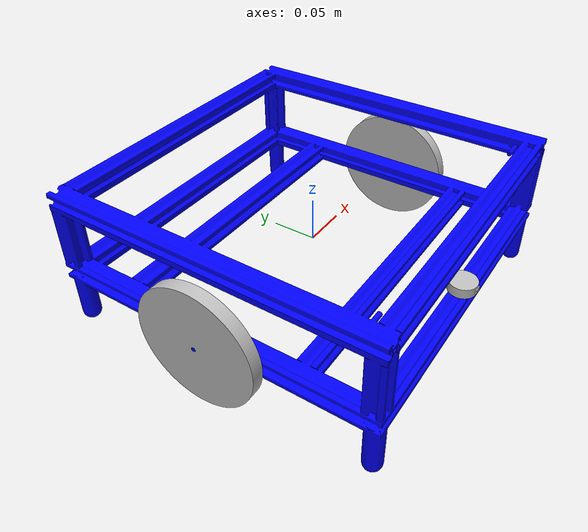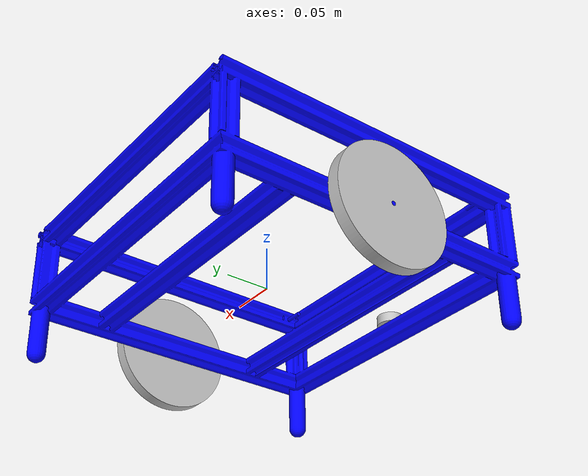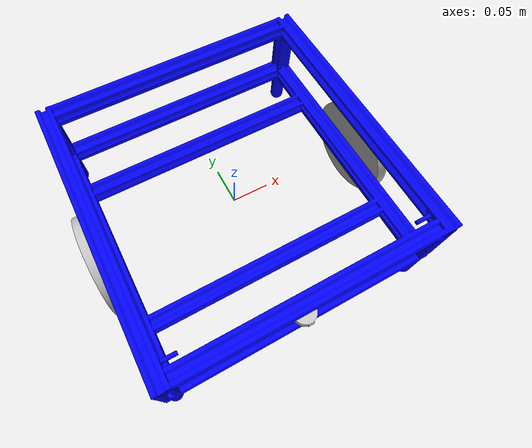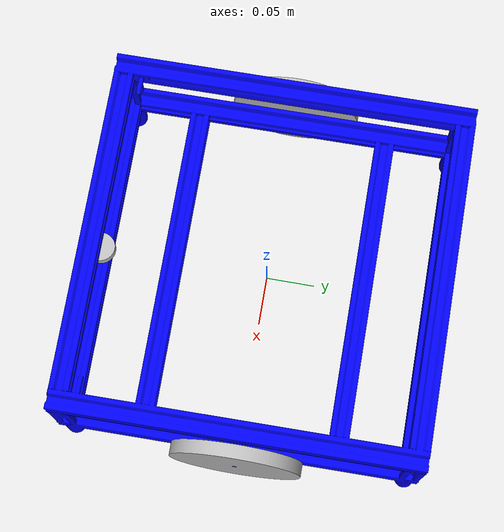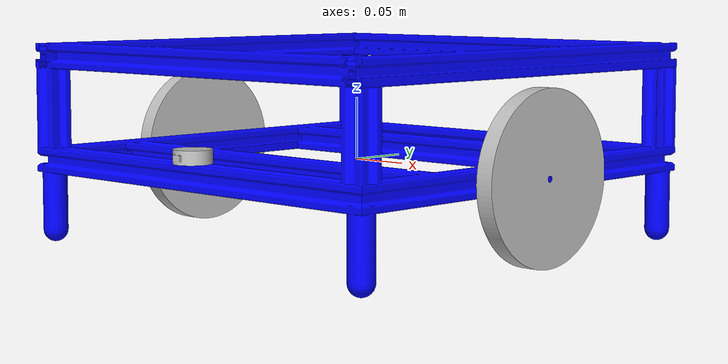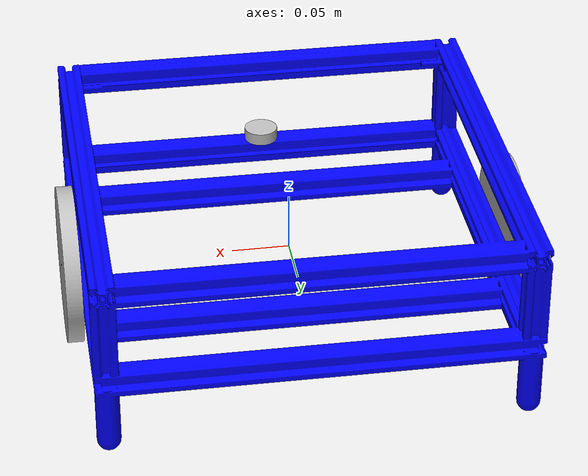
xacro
<?xml version="1.0" ?>
<robot name="robot" xmlns:xacro="http://www.ros.org/wiki/xacro">

<xacro:arg name="use_ros2_control" default="true"/>
<xacro:property name="use_ros2_control" value="$(arg use_ros2_control)"/>

<xacro:include filename="$(find robot_description)/urdf/materials.xacro" />
<xacro:include filename="$(find robot_description)/urdf/robot.gazebo" />

<xacro:if value="${use_ros2_control}">
  <ros2_control name="GazeboSystem" type="system">
    <hardware>
      <plugin>gazebo_ros2_control/GazeboSystem</plugin>
    </hardware>
    <joint name="Revolute 1">
      <command_interface name="velocity"/>
      <state_interface name="position"/>
      <state_interface name="velocity"/>
    </joint>
    <joint name="Revolute 2">
      <command_interface name="velocity"/>
      <state_interface name="position"/>
      <state_interface name="velocity"/>
    </joint>
  </ros2_control>
</xacro:if>

<link name="base_link">
  <inertial>
    <origin xyz="-3.467800946074168e-08 0.02765437651265111 0.0005374932268026311" rpy="0 0 0"/>
    <mass value="5.44473712181124"/>
    <inertia ixx="0.122616" iyy="0.222783" izz="0.121986" ixy="-0.0" iyz="-0.000126" ixz="0.0"/>
  </inertial>
  <visual>
    <origin xyz="0 0 0" rpy="1.5708 0 0"/>
    <geometry>
      <mesh filename="file://$(find robot_description)/meshes/base_link.stl" scale="0.001 0.001 0.001"/>
    </geometry>
    <material name="Blue"/>
  </visual>
  <collision>
    <!-- Keep collision geometry aligned with the Fusion-exported visual mesh. -->
    <!-- Keep the chassis off the ground; the wheels provide the ground contact. -->
    <origin xyz="0 0 0.08" rpy="1.5708 0 0"/>
    <geometry>
      <mesh filename="file://$(find robot_description)/meshes/base_link.stl" scale="0.001 0.001 0.001"/>
    </geometry>
  </collision>

</link>

<link name="left_wheel_v2_1">
  <inertial>
    <origin xyz="-0.007000000000000006 -2.4079335537687613e-16 2.8740308442512036e-16" rpy="0 0 0"/>
    <mass value="1.5709376984643062"/>
    <inertia ixx="0.003584" iyy="0.001818" izz="0.001818" ixy="-0.0" iyz="-0.0" ixz="0.0"/>
  </inertial>
  <visual>
    <origin xyz="-0.199 -0.0 -0.0" rpy="0 0 0"/>
    <geometry>
      <mesh filename="file://$(find robot_description)/meshes/left_wheel_v2_1.stl" scale="0.001 0.001 0.001"/>
    </geometry>
    <material name="silver"/>
  </visual>
  <collision>
    <origin xyz="-0.199 -0.0 -0.0" rpy="0 0 0"/>
    <geometry>
      <mesh filename="file://$(find robot_description)/meshes/left_wheel_v2_1.stl" scale="0.001 0.001 0.001"/>
    </geometry>
  </collision>
</link>

<link name="right_wheel_v2_1">
  <inertial>
    <origin xyz="0.007000000000000062 0.0 3.6358072842210572e-16" rpy="0 0 0"/>
    <mass value="1.5709376984643066"/>
    <inertia ixx="0.003584" iyy="0.001818" izz="0.001818" ixy="-0.0" iyz="0.0" ixz="-0.0"/>
  </inertial>
  <visual>
    <origin xyz="0.199 -0.0 -0.0" rpy="0 0 0"/>
    <geometry>
      <mesh filename="file://$(find robot_description)/meshes/right_wheel_v2_1.stl" scale="0.001 0.001 0.001"/>
    </geometry>
    <material name="silver"/>
  </visual>
  <collision>
    <origin xyz="0.199 -0.0 -0.0" rpy="0 0 0"/>
    <geometry>
      <mesh filename="file://$(find robot_description)/meshes/right_wheel_v2_1.stl" scale="0.001 0.001 0.001"/>
    </geometry>
  </collision>
</link>

<link name="lidar_v2_1">
  <inertial>
    <origin xyz="-4.263357981435317e-05 -0.6753469745387766305 8.120050324805783e-05" rpy="0 0 0"/>
    <mass value="0.059473228691739634"/>
    <inertia ixx="4e-06" iyy="7e-06" izz="4e-06" ixy="-0.0" iyz="0.0" ixz="0.0"/>
  </inertial>
  <visual>
    <origin xyz="0 0.0 -0.175" rpy="0 0 0"/>
    <geometry>
      <mesh filename="file://$(find robot_description)/meshes/lidar_v2_1.stl" scale="0.001 0.001 0.001"/>
    </geometry>
    <material name="silver"/>
  </visual>
  <collision>
    <origin xyz="5.8e-05 -0.019 -0.175" rpy="0 0 0"/>
    <geometry>
      <mesh filename="file://$(find robot_description)/meshes/lidar_v2_1.stl" scale="0.001 0.001 0.001"/>
    </geometry>
  </collision>
</link>

<joint name="Revolute 1" type="continuous">
  <origin xyz="0.199 0.0 0.0" rpy="0 0 0"/>
  <parent link="base_link"/>
  <child link="left_wheel_v2_1"/>
  <axis xyz="-1.0 0.0 0.0"/>
</joint>

<joint name="Revolute 2" type="continuous">
  <origin xyz="-0.199 0.0 0.0" rpy="0 0 0"/>
  <parent link="base_link"/>
  <child link="right_wheel_v2_1"/>
  <axis xyz="-1.0 0.0 0.0"/>
</joint>

<joint name="Revolute 3" type="fixed">
  <origin xyz="-5.8e-05 -0.175 -0.000005" rpy="1.5708 0 0"/>
  <parent link="base_link"/>
  <child link="lidar_v2_1"/>
  <axis xyz="0.0 1.0 0.0"/>
</joint>

<link name="imu_link"/>
<joint name="imu_joint" type="fixed">
  <origin xyz="0 0 0.12" rpy="0 0 0"/>
  <parent link="base_link"/>
  <child link="imu_link"/>
</joint>

<link name="camera_link"/>
<joint name="camera_joint" type="fixed">
  <!-- The Fusion model's forward direction is +Y. -->
  <!-- Camera looks backward along -Y. -->
  <origin xyz="0 0.12 0.12" rpy="0 0 -1.5708"/>
  <parent link="base_link"/>
  <child link="camera_link"/>
</joint>

<link name="camera_optical_frame"/>
<joint name="camera_optical_joint" type="fixed">
  <origin xyz="0 0 0" rpy="-1.5708 0 -1.5708"/>
  <parent link="camera_link"/>
  <child link="camera_optical_frame"/>
</joint>

</robot>

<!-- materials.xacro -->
<robot name="robot" xmlns:xacro="http://www.ros.org/wiki/xacro" >

<material name="Black">
  <color rgba="0 0 0 1"/>
</material>
<material name="Blue">
  <color rgba="0 0 1 1"/>
</material>
<material name="Red">
  <color rgba="1 0 0 1"/>
</material>
<material name="silver">
  <color rgba="0.75 0.75 0.75 1"/>
</material>

</robot>

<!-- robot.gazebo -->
<robot name="robot" xmlns:xacro="http://www.ros.org/wiki/xacro" >

<xacro:property name="body_color" value="Gazebo/Silver" />

<!-- Gazebo Classic differential-drive controller. The Fusion export uses X as
     the wheel axle and places the wheels at +/- 0.199 m on X. -->
<gazebo>
  <xacro:if value="${not use_ros2_control}">
  <plugin name="diff_drive" filename="libgazebo_ros_diff_drive.so">
    <ros>
      <remapping>cmd_vel:=cmd_vel</remapping>
      <remapping>odom:=odom</remapping>
    </ros>
    <update_rate>100</update_rate>
    <left_joint>Revolute 1</left_joint>
    <right_joint>Revolute 2</right_joint>
    <wheel_separation>0.398</wheel_separation>
    <wheel_diameter>0.14</wheel_diameter>
    <max_wheel_torque>12</max_wheel_torque>
    <max_wheel_acceleration>2</max_wheel_acceleration>
    <command_topic>cmd_vel</command_topic>
    <odometry_topic>odom</odometry_topic>
    <odometry_frame>odom</odometry_frame>
    <robot_base_frame>base_link</robot_base_frame>
    <publish_odom>true</publish_odom>
    <publish_odom_tf>true</publish_odom_tf>
    <publish_wheel_tf>true</publish_wheel_tf>
  </plugin>

  <plugin name="joint_state_publisher" filename="libgazebo_ros_joint_state_publisher.so">
    <ros>
      <remapping>~/out:=joint_states</remapping>
    </ros>
    <update_rate>30</update_rate>
    <joint_name>Revolute 1</joint_name>
    <joint_name>Revolute 2</joint_name>
    <joint_name>Revolute 3</joint_name>
  </plugin>
  </xacro:if>

  <xacro:if value="${use_ros2_control}">
    <plugin name="gazebo_ros2_control" filename="libgazebo_ros2_control.so">
      <parameters>$(find robot_description)/config/controllers.yaml</parameters>
    </plugin>
  </xacro:if>
</gazebo>
<gazebo reference="base_link">
  <material>${body_color}</material>
  <!-- The spherical supports should slide/roll as caster contacts, not brake
       the robot. Drive-wheel friction is configured separately below. -->
  <mu1>0.2</mu1>
  <mu2>0.2</mu2>
  <self_collide>false</self_collide>
  <gravity>true</gravity>
</gazebo>

<gazebo reference="left_wheel_v2_1">
  <material>${body_color}</material>
  <mu1>1.0</mu1>
  <mu2>1.0</mu2>
  <self_collide>false</self_collide>
</gazebo>

<gazebo reference="right_wheel_v2_1">
  <material>${body_color}</material>
  <mu1>1.0</mu1>
  <mu2>1.0</mu2>
  <self_collide>false</self_collide>
</gazebo>

<gazebo reference="lidar_v2_1">
  <material>${body_color}</material>
  <mu1>0.2</mu1>
  <mu2>0.2</mu2>
  <self_collide>false</self_collide>

  <!-- The lidar link is rotated +90 degrees around X by the Fusion joint.
       Rotate the sensor back so its scan plane is horizontal in Gazebo. -->
  <sensor name="lidar" type="ray">
    <pose>0 0 0 -1.5708 0 0</pose>
    <update_rate>10</update_rate>
    <ray>
      <scan>
        <horizontal>
          <samples>360</samples>
          <resolution>1</resolution>
          <min_angle>-3.14159265359</min_angle>
          <max_angle>3.14159265359</max_angle>
        </horizontal>
      </scan>
      <range>
        <min>0.12</min>
        <max>12.0</max>
        <resolution>0.01</resolution>
      </range>
    </ray>
    <plugin name="gazebo_ros_lidar" filename="libgazebo_ros_ray_sensor.so">
      <ros>
        <remapping>~/out:=scan</remapping>
      </ros>
      <output_type>sensor_msgs/LaserScan</output_type>
      <frame_name>lidar_v2_1</frame_name>
    </plugin>
  </sensor>
</gazebo>

<gazebo reference="imu_link">
  <sensor name="imu_sensor" type="imu">
    <always_on>true</always_on>
    <update_rate>100</update_rate>
    <visualize>false</visualize>
    <plugin name="gazebo_ros_imu" filename="libgazebo_ros_imu_sensor.so">
      <ros>
        <remapping>~/out:=imu/data</remapping>
      </ros>
      <topicName>imu/data</topicName>
      <frameName>imu_link</frameName>
    </plugin>
  </sensor>
</gazebo>

<gazebo reference="camera_link">
  <sensor name="rgb_camera" type="camera">
    <always_on>true</always_on>
    <update_rate>15</update_rate>
    <visualize>true</visualize>
    <camera>
      <horizontal_fov>1.047</horizontal_fov>
      <image>
        <width>640</width>
        <height>480</height>
        <format>R8G8B8</format>
      </image>
      <clip>
        <near>0.05</near>
        <far>30.0</far>
      </clip>
    </camera>
    <plugin name="gazebo_ros_camera" filename="libgazebo_ros_camera.so">
      <ros>
        <remapping>image_raw:=camera/image_raw</remapping>
        <remapping>camera_info:=camera/camera_info</remapping>
      </ros>
      <camera_name>camera</camera_name>
      <frame_name>camera_optical_frame</frame_name>
    </plugin>
  </sensor>
</gazebo>

</robot>
